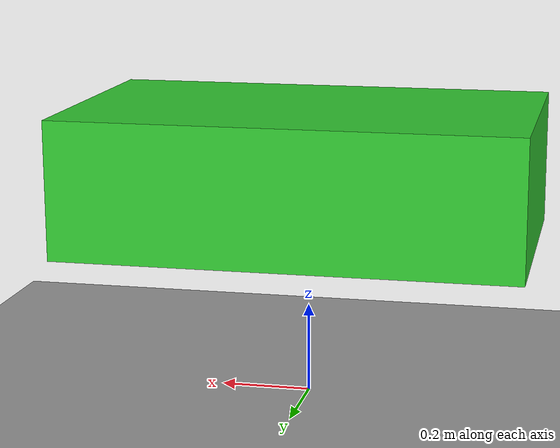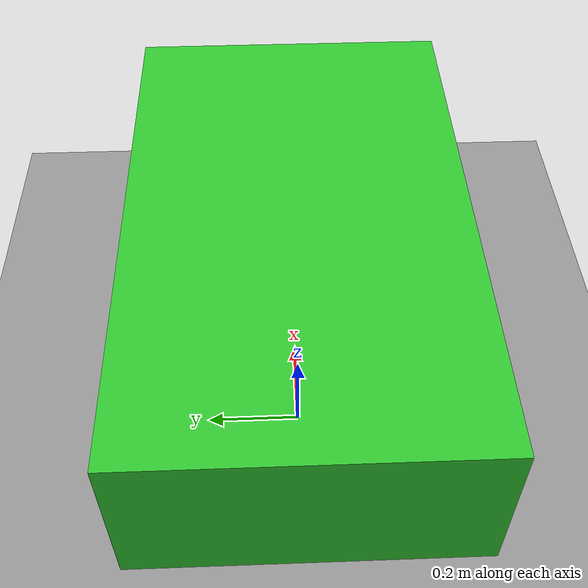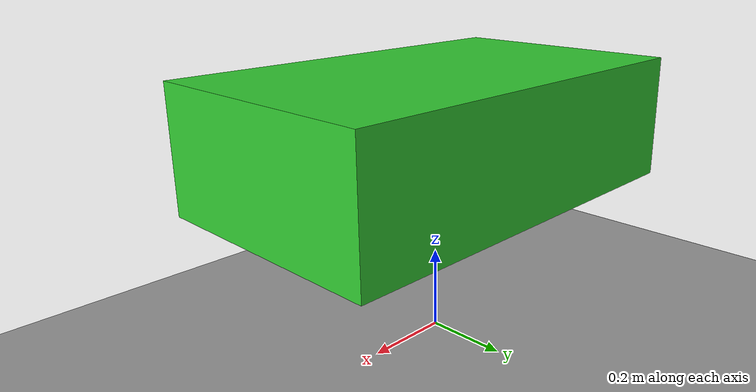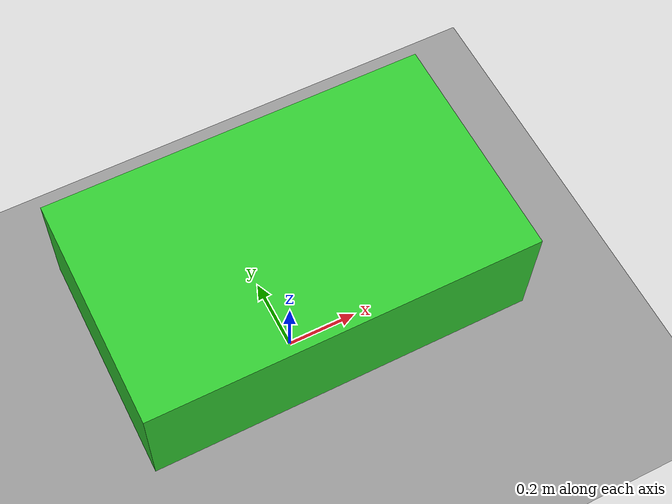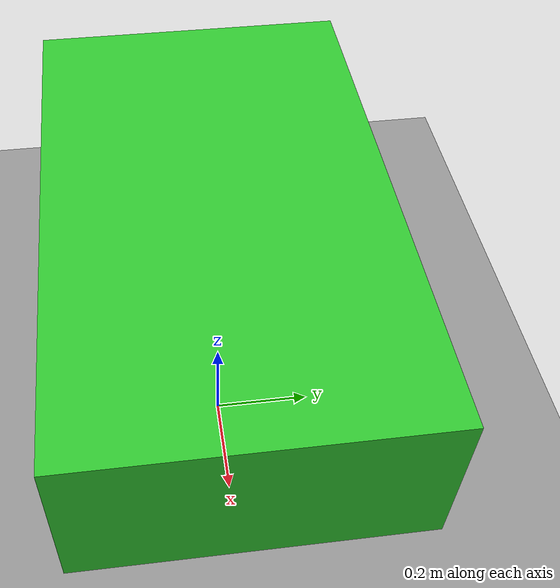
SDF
<?xml version="1.0" ?>
<sdf version="1.8">
  <world name="test_world">

    <plugin filename="gz-sim-scene-broadcaster-system" name="gz::sim::systems::SceneBroadcaster"/>

    <light type="directional" name="sun">
      <cast_shadows>false</cast_shadows>
      <pose>0 0 10 0 0 0</pose>
      <diffuse>0.8 0.8 0.8 1</diffuse>
      <specular>0.2 0.2 0.2 1</specular>
    </light>

    <model name="ground_plane">
      <static>true</static>
      <link name="link">
        <collision name="collision">
          <geometry><plane><normal>0 0 1</normal></plane></geometry>
          <surface>
            <friction><ode><mu>1.0</mu><mu2>1.0</mu2></ode></friction>
          </surface>
        </collision>
        <visual name="visual">
          <pose>0 0 0 0 0 0</pose>
          <geometry><plane><normal>0 0 1</normal><size>100 100</size></plane></geometry>
          <material>
            <ambient>0.3 0.3 0.3 1.0</ambient>
            <diffuse>0.6 0.6 0.6 1.0</diffuse>
          </material>
        </visual>
      </link>
    </model>

    <model name="test_box">
      <static>false</static>
      <pose>0 0 0.5 0 0 0</pose>
      <link name="link">
        <inertial>
          <mass>2.0</mass>
          <inertia>
            <ixx>0.1</ixx><iyy>0.1</iyy><izz>0.1</izz>
            <ixy>0.0</ixy><ixz>0.0</ixz><iyz>0.0</iyz>
          </inertia>
        </inertial>
        <collision name="collision">
          <geometry><box><size>1.0 0.6 0.3</size></box></geometry>
          <surface>
            <friction><ode><mu>0.5</mu><mu2>0.5</mu2></ode></friction>
          </surface>
        </collision>
        <visual name="visual">
          <geometry><box><size>1.0 0.6 0.3</size></box></geometry>
          <material>
            <ambient>0.2 0.6 0.2 1.0</ambient>
            <diffuse>0.2 0.8 0.2 1.0</diffuse>
          </material>
        </visual>
      </link>
      <plugin filename="/home/aji/robot_ws/src/asv1/src/plugins/libvelocity_controller.so" name="asv1::VelocityController"/>
    </model>
  </world>
</sdf>
